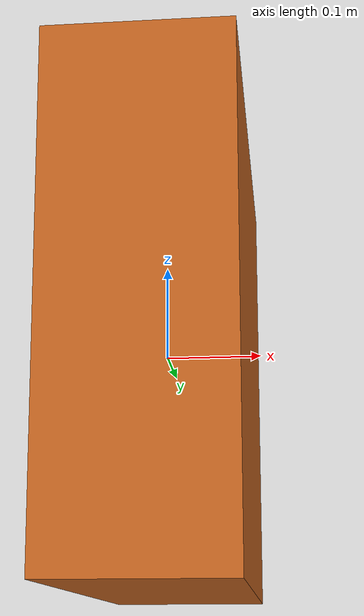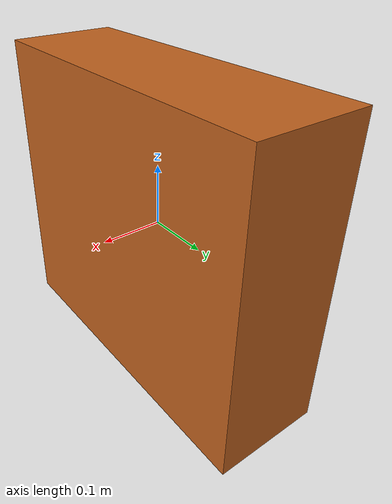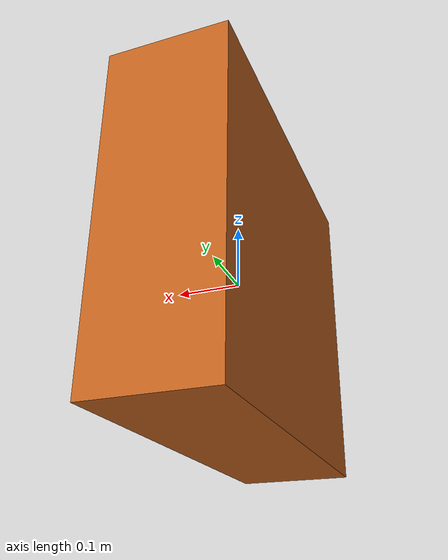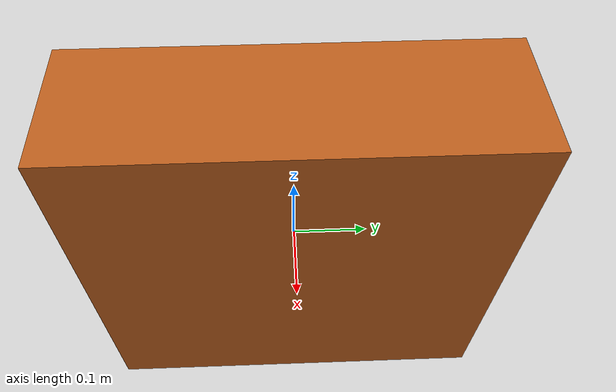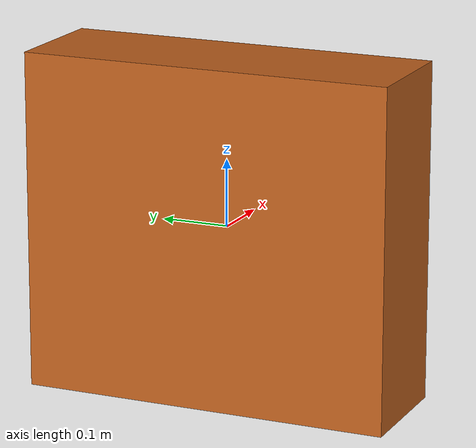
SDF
<?xml version="1.0"?>
<!-- Static block for Nav2 replan test (spawned at runtime, not in moon_arena.sdf). -->
<sdf version="1.11">
  <model name="replan_test_block">
    <static>true</static>
    <link name="link">
      <collision name="collision">
        <geometry>
          <box>
            <size>0.18 0.55 0.50</size>
          </box>
        </geometry>
      </collision>
      <visual name="visual">
        <geometry>
          <box>
            <size>0.18 0.55 0.50</size>
          </box>
        </geometry>
        <material>
          <ambient>0.55 0.28 0.10 1</ambient>
          <diffuse>0.75 0.38 0.12 1</diffuse>
        </material>
      </visual>
    </link>
  </model>
</sdf>
